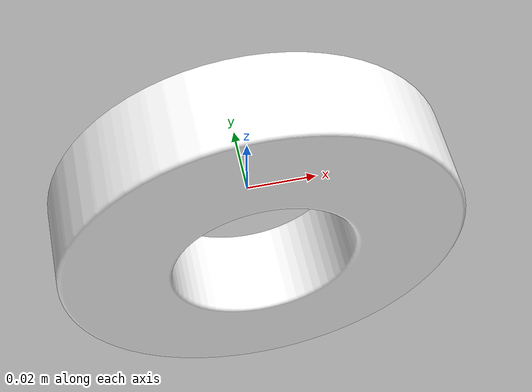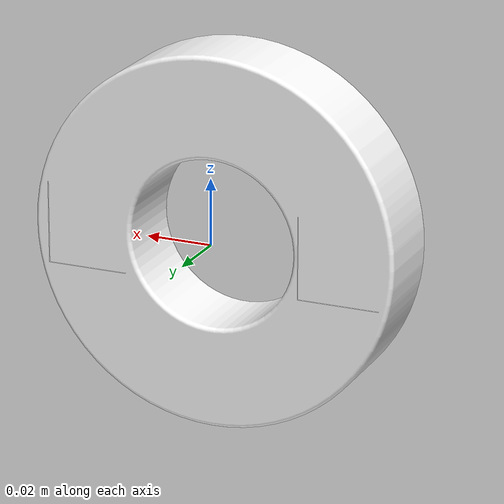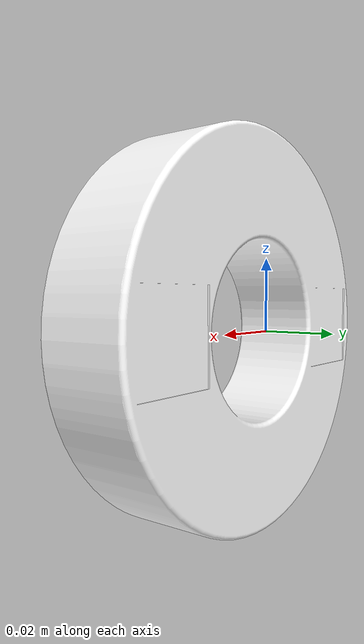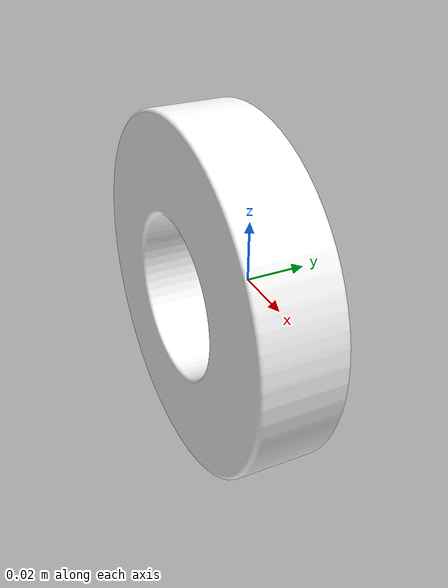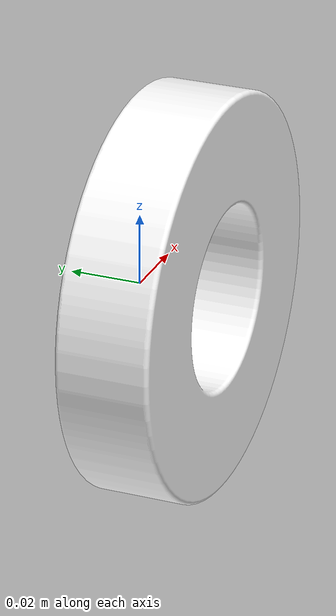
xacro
<robot xmlns:xacro="http://www.ros.org/wiki/xacro" name="ring">

    <xacro:arg name="ring_color" default="white"/>

    <xacro:property name="white" value="1.0 1.0 1.0 1.0" />
    <xacro:property name="blue" value="0.0 0.75 0.86 1.0" />
    <xacro:property name="green" value="0.65 0.83 0.02 1.0" />
    <xacro:property name="yellow" value="0.94 0.79 0.16 1.0" />
    <xacro:property name="orange" value="0.97 0.48 0.0 1.0" />
    <xacro:property name="red" value="0.88 0.0 0.06 1.0" />

    <!-- Base Link -->
    <link name="center">
        <visual>
            <origin xyz="0.0 0.0 0.0" rpy="${pi/2} 0.0 0.0" />
            <geometry>
                <mesh filename="file://$(find teleop_visualization)/ring.stl" scale="1.0 1.0 1.0" />
            </geometry>
            <material name="Cyan">
                <color rgba="${$(arg ring_color)}"/>
            </material>
        </visual>

        <collision>
            <origin xyz="0.0 0.0 0.0" rpy="0.0 0.0 0.0" />
            <geometry>
                <cylinder radius="0.05" length="0.02"/>
            </geometry>
        </collision>
    </link>

</robot>
